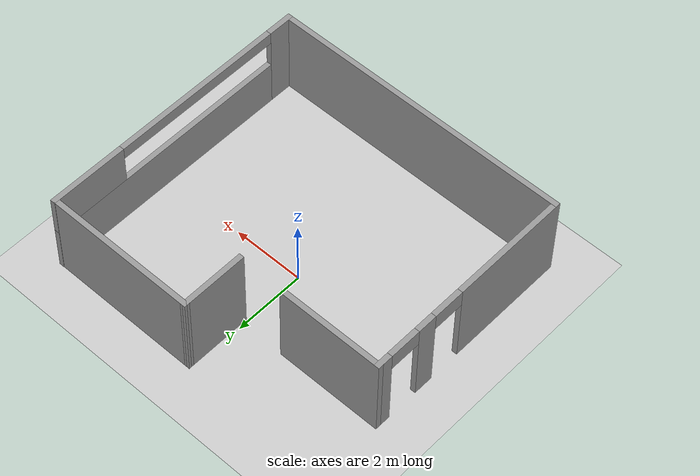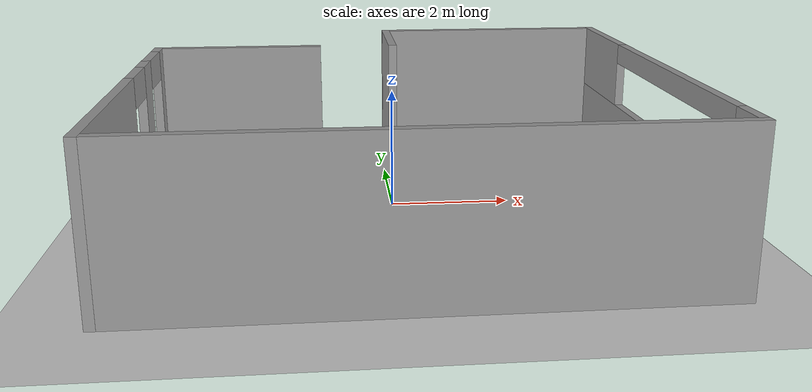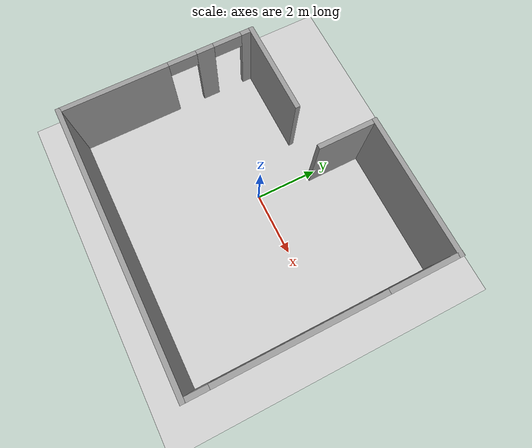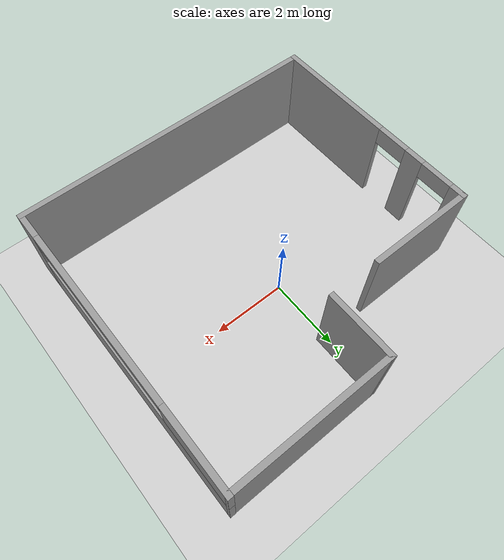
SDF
<sdf version="1.7">
 <world name="default">
  <light name="sun" type="directional">
   <pose>0 0 10 0 -0 0</pose>
   <diffuse>0.8 0.8 0.8 1</diffuse>
   <specular>0.2 0.2 0.2 1</specular>
   <attenuation>
    <range>1000</range>
    <constant>0.9</constant>
    <linear>0.01</linear>
    <quadratic>0.001</quadratic>
   </attenuation>
   <direction>-0.5 0.1 -0.9</direction>
   <spot><inner_angle>0</inner_angle><outer_angle>0</outer_angle><falloff>0</falloff></spot>
  </light>
  <model name="ground_plane">
   <static>1</static>
   <link name="link">
    <collision name="collision">
     <geometry><plane><normal>0 0 1</normal><size>100 100</size></plane></geometry>
     <surface>
      <contact><collide_bitmask>65535</collide_bitmask></contact>
      <friction><ode><mu>100</mu><mu2>50</mu2></ode></friction>
     </surface>
    </collision>
    <visual name="visual">
     <cast_shadows>0</cast_shadows>
     <geometry><plane><normal>0 0 1</normal><size>100 100</size></plane></geometry>
     <material>
      <script><uri>file://media/materials/scripts/gazebo.material</uri><name>Gazebo/Grey</name></script>
     </material>
    </visual>
   </link>
  </model>
  <gravity>0 0 -9.8</gravity>
  <magnetic_field>6e-06 2.3e-05 -4.2e-05</magnetic_field>
  <atmosphere type="adiabatic"/>
  <physics type="ode">
   <max_step_size>0.001</max_step_size>
   <real_time_factor>1</real_time_factor>
   <real_time_update_rate>1000</real_time_update_rate>
  </physics>
  <scene><ambient>0.4 0.4 0.4 1</ambient><background>0.7 0.7 0.7 1</background><shadows>1</shadows></scene>
  <audio><device>default</device></audio>
  <spherical_coordinates>
   <surface_model>EARTH_WGS84</surface_model>
   <latitude_deg>0</latitude_deg>
   <longitude_deg>0</longitude_deg>
   <elevation>0</elevation>
   <heading_deg>0</heading_deg>
  </spherical_coordinates>
  <model name="work_house">
   <pose>0.145319 -0.396451 0 0 -0 0</pose>
   <link name="Wall_10">
    <collision name="Wall_10_Collision">
     <geometry><box><size>3 0.15 2.5</size></box></geometry>
     <pose>0 0 1.25 0 -0 0</pose>
    </collision>
    <visual name="Wall_10_Visual">
     <pose>0 0 1.25 0 -0 0</pose>
     <geometry><box><size>3 0.15 2.5</size></box></geometry>
     <material>
      <script><uri>file://media/materials/scripts/gazebo.material</uri><name>Gazebo/Grey</name></script>
      <ambient>0.541176 0.541176 0.541176 1</ambient>
     </material>
     <meta><layer>0</layer></meta>
    </visual>
    <pose>-2.82714 2.17494 0 0 -0 3.14159</pose>
   </link>
   <link name="Wall_16">
    <collision name="Wall_16_Collision">
     <geometry><box><size>4.40416 0.15 2.5</size></box></geometry>
     <pose>0 0 1.25 0 -0 0</pose>
    </collision>
    <visual name="Wall_16_Visual">
     <pose>0 0 1.25 0 -0 0</pose>
     <geometry><box><size>4.40416 0.15 2.5</size></box></geometry>
     <material>
      <script><uri>file://media/materials/scripts/gazebo.material</uri><name>Gazebo/Grey</name></script>
      <ambient>0.541176 0.541176 0.541176 1</ambient>
     </material>
     <meta><layer>0</layer></meta>
    </visual>
    <pose>2.12494 3.92169 0 0 -0 3.14006</pose>
   </link>
   <link name="Wall_18">
    <collision name="Wall_18_Collision">
     <geometry><box><size>1.9 0.15 2.5</size></box></geometry>
     <pose>0 0 1.25 0 -0 0</pose>
    </collision>
    <visual name="Wall_18_Visual">
     <pose>0 0 1.25 0 -0 0</pose>
     <geometry><box><size>1.9 0.15 2.5</size></box></geometry>
     <material>
      <script><uri>file://media/materials/scripts/gazebo.material</uri><name>Gazebo/Grey</name></script>
      <ambient>0.541176 0.541176 0.541176 1</ambient>
     </material>
     <meta><layer>0</layer></meta>
    </visual>
    <pose>-0.002135 3.04994 0 0 -0 -1.5708</pose>
   </link>
   <link name="Wall_21">
    <collision name="Wall_21_Collision">
     <geometry><box><size>8.65416 0.15 2.5</size></box></geometry>
     <pose>0 0 1.25 0 -0 0</pose>
    </collision>
    <visual name="Wall_21_Visual">
     <pose>0 0 1.25 0 -0 0</pose>
     <geometry><box><size>8.65416 0.15 2.5</size></box></geometry>
     <material>
      <script><uri>file://media/materials/scripts/gazebo.material</uri><name>Gazebo/Grey</name></script>
      <ambient>0.541176 0.541176 0.541176 1</ambient>
     </material>
     <meta><layer>0</layer></meta>
    </visual>
    <pose>-5.7e-05 -3.92506 0 0 -0 0</pose>
   </link>
   <link name="Wall_5">
    <pose>-4.25213 -0.875057 0 0 -0 -1.5708</pose>
    <visual name="Wall_5_Visual_0">
     <pose>-2.90345 0 1.25 0 -0 0</pose>
     <geometry><box><size>0.443091 0.15 2.5</size></box></geometry>
     <material>
      <script><uri>file://media/materials/scripts/gazebo.material</uri><name>Gazebo/Grey</name></script>
      <ambient>0.541176 0.541176 0.541176 1</ambient>
     </material>
     <meta><layer>0</layer></meta>
    </visual>
    <collision name="Wall_5_Collision_0">
     <geometry><box><size>0.443091 0.15 2.5</size></box></geometry>
     <pose>-2.90345 0 1.25 0 -0 0</pose>
    </collision>
    <visual name="Wall_5_Visual_1">
     <pose>-1.50252 0 1.25 0 -0 0</pose>
     <geometry><box><size>0.558783 0.15 2.5</size></box></geometry>
     <material>
      <script><uri>file://media/materials/scripts/gazebo.material</uri><name>Gazebo/Grey</name></script>
      <ambient>0.541176 0.541176 0.541176 1</ambient>
     </material>
     <meta><layer>0</layer></meta>
    </visual>
    <collision name="Wall_5_Collision_1">
     <geometry><box><size>0.558783 0.15 2.5</size></box></geometry>
     <pose>-1.50252 0 1.25 0 -0 0</pose>
    </collision>
    <visual name="Wall_5_Visual_2">
     <pose>1.40094 0 1.25 0 -0 0</pose>
     <geometry><box><size>3.44813 0.15 2.5</size></box></geometry>
     <material>
      <script><uri>file://media/materials/scripts/gazebo.material</uri><name>Gazebo/Grey</name></script>
      <ambient>0.541176 0.541176 0.541176 1</ambient>
     </material>
     <meta><layer>0</layer></meta>
    </visual>
    <collision name="Wall_5_Collision_2">
     <geometry><box><size>3.44813 0.15 2.5</size></box></geometry>
     <pose>1.40094 0 1.25 0 -0 0</pose>
    </collision>
    <visual name="Wall_5_Visual_3">
     <pose>-2.23191 0 2.25 0 -0 0</pose>
     <geometry><box><size>0.9 0.15 0.5</size></box></geometry>
     <material>
      <script><uri>file://media/materials/scripts/gazebo.material</uri><name>Gazebo/Grey</name></script>
      <ambient>0.541176 0.541176 0.541176 1</ambient>
     </material>
     <meta><layer>0</layer></meta>
    </visual>
    <collision name="Wall_5_Collision_3">
     <geometry><box><size>0.9 0.15 0.5</size></box></geometry>
     <pose>-2.23191 0 2.25 0 -0 0</pose>
    </collision>
    <visual name="Wall_5_Visual_4">
     <pose>-0.773125 0 2.25 0 -0 0</pose>
     <geometry><box><size>0.9 0.15 0.5</size></box></geometry>
     <material>
      <script><uri>file://media/materials/scripts/gazebo.material</uri><name>Gazebo/Grey</name></script>
      <ambient>0.541176 0.541176 0.541176 1</ambient>
     </material>
     <meta><layer>0</layer></meta>
    </visual>
    <collision name="Wall_5_Collision_4">
     <geometry><box><size>0.9 0.15 0.5</size></box></geometry>
     <pose>-0.773125 0 2.25 0 -0 0</pose>
    </collision>
   </link>
   <link name="Wall_7">
    <pose>4.25202 -5.7e-05 0 0 -0 1.5708</pose>
    <visual name="Wall_7_Visual_0">
     <pose>-3.60459 0 1.25 0 -0 0</pose>
     <geometry><box><size>0.790814 0.15 2.5</size></box></geometry>
     <material>
      <script><uri>file://media/materials/scripts/gazebo.material</uri><name>Gazebo/Grey</name></script>
      <ambient>0.541176 0.541176 0.541176 1</ambient>
     </material>
     <meta><layer>0</layer></meta>
    </visual>
    <collision name="Wall_7_Collision_0">
     <geometry><box><size>0.790814 0.15 2.5</size></box></geometry>
     <pose>-3.60459 0 1.25 0 -0 0</pose>
    </collision>
    <visual name="Wall_7_Visual_1">
     <pose>0.395407 0 0.675 0 -0 0</pose>
     <geometry><box><size>7.20919 0.15 1.35</size></box></geometry>
     <material>
      <script><uri>file://media/materials/scripts/gazebo.material</uri><name>Gazebo/Grey</name></script>
      <ambient>0.541176 0.541176 0.541176 1</ambient>
     </material>
     <meta><layer>0</layer></meta>
    </visual>
    <collision name="Wall_7_Collision_1">
     <geometry><box><size>7.20919 0.15 1.35</size></box></geometry>
     <pose>0.395407 0 0.675 0 -0 0</pose>
    </collision>
    <visual name="Wall_7_Visual_2">
     <pose>2.89541 0 1.925 0 -0 0</pose>
     <geometry><box><size>2.20919 0.15 1.15</size></box></geometry>
     <material>
      <script><uri>file://media/materials/scripts/gazebo.material</uri><name>Gazebo/Grey</name></script>
      <ambient>0.541176 0.541176 0.541176 1</ambient>
     </material>
     <meta><layer>0</layer></meta>
    </visual>
    <collision name="Wall_7_Collision_2">
     <geometry><box><size>2.20919 0.15 1.15</size></box></geometry>
     <pose>2.89541 0 1.925 0 -0 0</pose>
    </collision>
    <visual name="Wall_7_Visual_3">
     <pose>-0.709186 0 2.325 0 -0 0</pose>
     <geometry><box><size>5 0.15 0.35</size></box></geometry>
     <material>
      <script><uri>file://media/materials/scripts/gazebo.material</uri><name>Gazebo/Grey</name></script>
      <ambient>0.541176 0.541176 0.541176 1</ambient>
     </material>
     <meta><layer>0</layer></meta>
    </visual>
    <collision name="Wall_7_Collision_3">
     <geometry><box><size>5 0.15 0.35</size></box></geometry>
     <pose>-0.709186 0 2.325 0 -0 0</pose>
    </collision>
   </link>
   <static>1</static>
  </model>
 </world>
</sdf>
